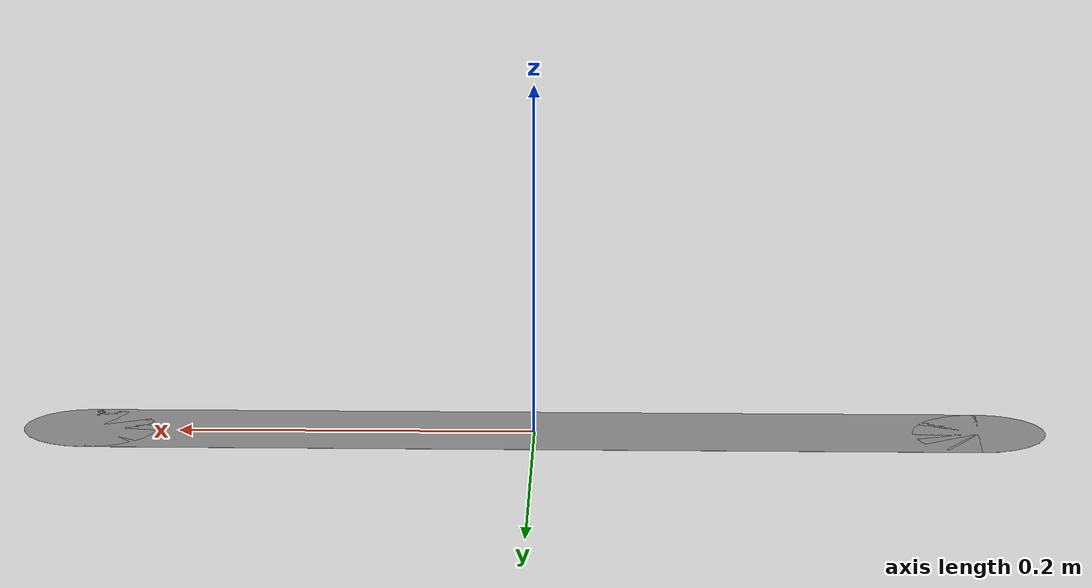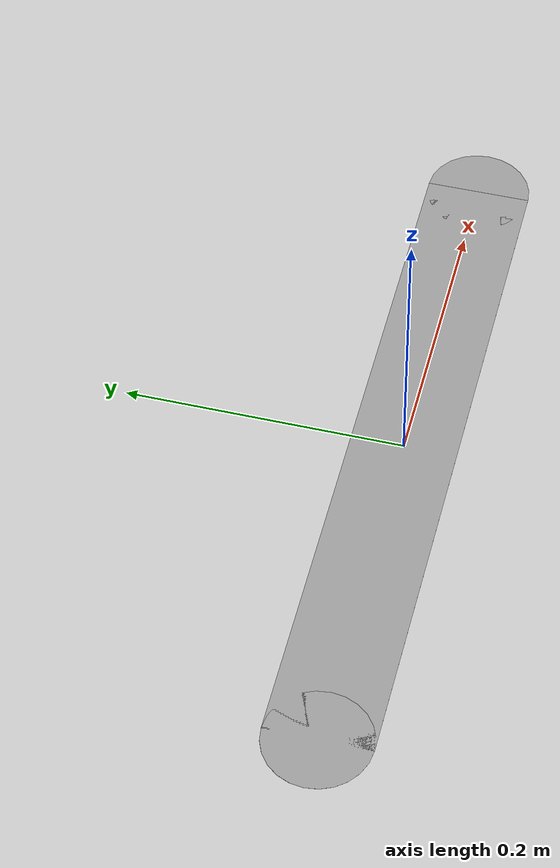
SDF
<?xml version='1.0'?>
<sdf version='1.6'>
  <model name='extremelyshort_path_model'>
    <link name='link_0'>
      <inertial>
        <mass>1</mass>
        <inertia>
          <ixx>0.1</ixx>
          <ixy>0</ixy>
          <ixz>0</ixz>
          <iyy>0.1</iyy>
          <iyz>0</iyz>
          <izz>0.1</izz>
        </inertia>
        <pose frame=''>0 0 0 0 -0 0</pose>
      </inertial>
      <pose frame=''>0 0 0.001 0 -0 0</pose>
      <gravity>1</gravity>
      <self_collide>0</self_collide>
      <kinematic>0</kinematic>
      <enable_wind>0</enable_wind>
      <visual name='ModelPreview_1::link_0::visual_1'>
        <pose frame=''>0 0 0 0 -0 0</pose>
        <geometry>
          <box>
            <size>0.5 0.075 0.0001</size>
          </box>
        </geometry>
        <material>
          <lighting>1</lighting>
          <script>
            <uri>file://media/materials/scripts/gazebo.material</uri>
            <name>Gazebo/Grey</name>
          </script>
          <shader type='pixel'>
            <normal_map>__default__</normal_map>
          </shader>
          <ambient>1 1 1 1</ambient>
          <diffuse>1 1 1 1</diffuse>
          <specular>0.05 0.05 0.05 1</specular>
          <emissive>0 0 0 1</emissive>
        </material>
        <transparency>0</transparency>
        <cast_shadows>0</cast_shadows>
      </visual>
      <visual name='ModelPreview_1::link_0::visual_2'>
        <pose frame=''>-0.25 0 0 0 -0 0</pose>
        <geometry>
          <cylinder>
            <radius>0.0375</radius>
            <length>0.0001</length>
          </cylinder>
        </geometry>
        <material>
          <lighting>1</lighting>
          <script>
            <uri>file://media/materials/scripts/gazebo.material</uri>
            <name>Gazebo/Grey</name>
          </script>
          <shader type='pixel'>
            <normal_map>__default__</normal_map>
          </shader>
          <ambient>1 1 1 1</ambient>
          <diffuse>1 1 1 1</diffuse>
          <specular>0.05 0.05 0.05 1</specular>
          <emissive>0 0 0 1</emissive>
        </material>
        <transparency>0</transparency>
        <cast_shadows>0</cast_shadows>
      </visual>
      <visual name='visual'>
        <pose frame=''>0.25 0 0 0 -0 0</pose>
        <geometry>
          <cylinder>
            <radius>0.0375</radius>
            <length>0.0001</length>
          </cylinder>
        </geometry>
        <material>
          <lighting>1</lighting>
          <script>
            <uri>file://media/materials/scripts/gazebo.material</uri>
            <name>Gazebo/Grey</name>
          </script>
          <shader type='pixel'>
            <normal_map>__default__</normal_map>
          </shader>
          <ambient>1 1 1 1</ambient>
          <diffuse>1 1 1 1</diffuse>
          <specular>0.05 0.05 0.05 1</specular>
          <emissive>0 0 0 1</emissive>
        </material>
        <transparency>0</transparency>
        <cast_shadows>0</cast_shadows>
      </visual>
    </link>
    <static>1</static>
    <allow_auto_disable>1</allow_auto_disable>
  </model>
</sdf>
